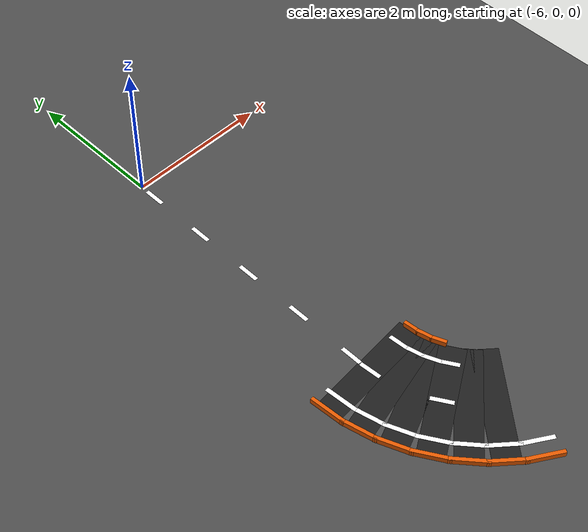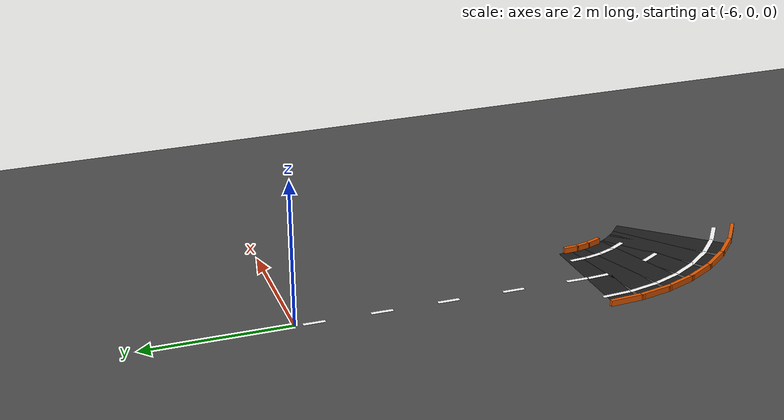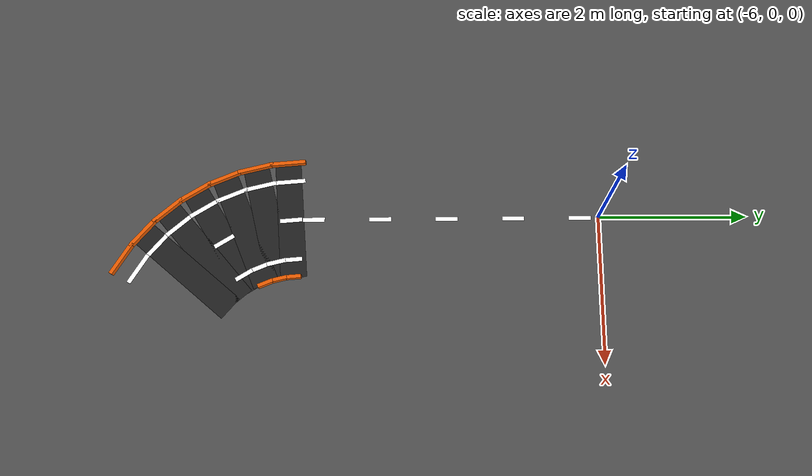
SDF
<sdf version="1.6">
 <world name="qcar_oval_wide">
  <model name="ground_plane">
   <static>true</static>
   <link name="link">
    <collision name="collision">
     <geometry><plane><normal>0 0 1</normal><size>200 200</size></plane></geometry>
    </collision>
    <visual name="visual">
     <geometry><plane><normal>0 0 1</normal><size>200 200</size></plane></geometry>
     <material><ambient>0.3 0.3 0.3 1</ambient><diffuse>0.3 0.3 0.3 1</diffuse></material>
    </visual>
   </link>
  </model>
  <model name="m47">
   <static>true</static>
   <pose>-6.0000 -3.8500 0.00200 0 0 0.00000</pose>
   <link name="l">
    <visual name="v">
     <geometry><box><size>0.0600 0.3000 0.0010</size></box></geometry>
     <material><ambient>1 1 1 1</ambient><diffuse>1 1 1 1</diffuse></material>
    </visual>
   </link>
  </model>
  <model name="m48">
   <static>true</static>
   <pose>-6.0000 -2.9500 0.00200 0 0 0.00000</pose>
   <link name="l">
    <visual name="v">
     <geometry><box><size>0.0600 0.3000 0.0010</size></box></geometry>
     <material><ambient>1 1 1 1</ambient><diffuse>1 1 1 1</diffuse></material>
    </visual>
   </link>
  </model>
  <model name="m49">
   <static>true</static>
   <pose>-6.0000 -2.0500 0.00200 0 0 0.00000</pose>
   <link name="l">
    <visual name="v">
     <geometry><box><size>0.0600 0.3000 0.0010</size></box></geometry>
     <material><ambient>1 1 1 1</ambient><diffuse>1 1 1 1</diffuse></material>
    </visual>
   </link>
  </model>
  <model name="m50">
   <static>true</static>
   <pose>-6.0000 -1.1500 0.00200 0 0 0.00000</pose>
   <link name="l">
    <visual name="v">
     <geometry><box><size>0.0600 0.3000 0.0010</size></box></geometry>
     <material><ambient>1 1 1 1</ambient><diffuse>1 1 1 1</diffuse></material>
    </visual>
   </link>
  </model>
  <model name="m51">
   <static>true</static>
   <pose>-6.0000 -0.2500 0.00200 0 0 0.00000</pose>
   <link name="l">
    <visual name="v">
     <geometry><box><size>0.0600 0.3000 0.0010</size></box></geometry>
     <material><ambient>1 1 1 1</ambient><diffuse>1 1 1 1</diffuse></material>
    </visual>
   </link>
  </model>
  <model name="m218">
   <static>true</static>
   <pose>-5.9938 -4.1569 0.00100 0 0 4.79093</pose>
   <link name="l">
    <visual name="v">
     <geometry><box><size>0.3519 1.6000 0.0010</size></box></geometry>
     <material><ambient>0.12 0.12 0.12 1</ambient><diffuse>0.12 0.12 0.12 1</diffuse></material>
    </visual>
   </link>
  </model>
  <model name="m219">
   <static>true</static>
   <pose>-5.1963 -4.0942 0.04000 0 0 4.79093</pose>
   <link name="l">
    <visual name="v">
     <geometry><box><size>0.2111 0.0500 0.0800</size></box></geometry>
     <material><ambient>0.9 0.35 0.0 1</ambient><diffuse>0.9 0.35 0.0 1</diffuse></material>
    </visual>
   </link>
  </model>
  <model name="m220">
   <static>true</static>
   <pose>-6.7914 -4.2197 0.04000 0 0 4.79093</pose>
   <link name="l">
    <visual name="v">
     <geometry><box><size>0.4926 0.0500 0.0800</size></box></geometry>
     <material><ambient>0.9 0.35 0.0 1</ambient><diffuse>0.9 0.35 0.0 1</diffuse></material>
    </visual>
   </link>
  </model>
  <model name="m221">
   <static>true</static>
   <pose>-5.4455 -4.1138 0.00200 0 0 4.79093</pose>
   <link name="l">
    <visual name="v">
     <geometry><box><size>0.2551 0.0600 0.0010</size></box></geometry>
     <material><ambient>1 1 1 1</ambient><diffuse>1 1 1 1</diffuse></material>
    </visual>
   </link>
  </model>
  <model name="m222">
   <static>true</static>
   <pose>-6.5421 -4.2001 0.00200 0 0 4.79093</pose>
   <link name="l">
    <visual name="v">
     <geometry><box><size>0.4486 0.0600 0.0010</size></box></geometry>
     <material><ambient>1 1 1 1</ambient><diffuse>1 1 1 1</diffuse></material>
    </visual>
   </link>
  </model>
  <model name="m223">
   <static>true</static>
   <pose>-5.9938 -4.1569 0.00200 0 0 4.79093</pose>
   <link name="l">
    <visual name="v">
     <geometry><box><size>0.3000 0.0600 0.0010</size></box></geometry>
     <material><ambient>1 1 1 1</ambient><diffuse>1 1 1 1</diffuse></material>
    </visual>
   </link>
  </model>
  <model name="m224">
   <static>true</static>
   <pose>-5.9447 -4.4669 0.00100 0 0 4.94801</pose>
   <link name="l">
    <visual name="v">
     <geometry><box><size>0.3519 1.6000 0.0010</size></box></geometry>
     <material><ambient>0.12 0.12 0.12 1</ambient><diffuse>0.12 0.12 0.12 1</diffuse></material>
    </visual>
   </link>
  </model>
  <model name="m225">
   <static>true</static>
   <pose>-5.1668 -4.2801 0.04000 0 0 4.94801</pose>
   <link name="l">
    <visual name="v">
     <geometry><box><size>0.2111 0.0500 0.0800</size></box></geometry>
     <material><ambient>0.9 0.35 0.0 1</ambient><diffuse>0.9 0.35 0.0 1</diffuse></material>
    </visual>
   </link>
  </model>
  <model name="m226">
   <static>true</static>
   <pose>-6.7226 -4.6536 0.04000 0 0 4.94801</pose>
   <link name="l">
    <visual name="v">
     <geometry><box><size>0.4926 0.0500 0.0800</size></box></geometry>
     <material><ambient>0.9 0.35 0.0 1</ambient><diffuse>0.9 0.35 0.0 1</diffuse></material>
    </visual>
   </link>
  </model>
  <model name="m227">
   <static>true</static>
   <pose>-5.4099 -4.3385 0.00200 0 0 4.94801</pose>
   <link name="l">
    <visual name="v">
     <geometry><box><size>0.2551 0.0600 0.0010</size></box></geometry>
     <material><ambient>1 1 1 1</ambient><diffuse>1 1 1 1</diffuse></material>
    </visual>
   </link>
  </model>
  <model name="m228">
   <static>true</static>
   <pose>-6.4795 -4.5953 0.00200 0 0 4.94801</pose>
   <link name="l">
    <visual name="v">
     <geometry><box><size>0.4486 0.0600 0.0010</size></box></geometry>
     <material><ambient>1 1 1 1</ambient><diffuse>1 1 1 1</diffuse></material>
    </visual>
   </link>
  </model>
  <model name="m229">
   <static>true</static>
   <pose>-5.8478 -4.7654 0.00100 0 0 5.10509</pose>
   <link name="l">
    <visual name="v">
     <geometry><box><size>0.3519 1.6000 0.0010</size></box></geometry>
     <material><ambient>0.12 0.12 0.12 1</ambient><diffuse>0.12 0.12 0.12 1</diffuse></material>
    </visual>
   </link>
  </model>
  <model name="m230">
   <static>true</static>
   <pose>-5.1087 -4.4592 0.04000 0 0 5.10509</pose>
   <link name="l">
    <visual name="v">
     <geometry><box><size>0.2111 0.0500 0.0800</size></box></geometry>
     <material><ambient>0.9 0.35 0.0 1</ambient><diffuse>0.9 0.35 0.0 1</diffuse></material>
    </visual>
   </link>
  </model>
  <model name="m231">
   <static>true</static>
   <pose>-6.5869 -5.0715 0.04000 0 0 5.10509</pose>
   <link name="l">
    <visual name="v">
     <geometry><box><size>0.4926 0.0500 0.0800</size></box></geometry>
     <material><ambient>0.9 0.35 0.0 1</ambient><diffuse>0.9 0.35 0.0 1</diffuse></material>
    </visual>
   </link>
  </model>
  <model name="m232">
   <static>true</static>
   <pose>-5.3396 -4.5549 0.00200 0 0 5.10509</pose>
   <link name="l">
    <visual name="v">
     <geometry><box><size>0.2551 0.0600 0.0010</size></box></geometry>
     <material><ambient>1 1 1 1</ambient><diffuse>1 1 1 1</diffuse></material>
    </visual>
   </link>
  </model>
  <model name="m233">
   <static>true</static>
   <pose>-6.3559 -4.9758 0.00200 0 0 5.10509</pose>
   <link name="l">
    <visual name="v">
     <geometry><box><size>0.4486 0.0600 0.0010</size></box></geometry>
     <material><ambient>1 1 1 1</ambient><diffuse>1 1 1 1</diffuse></material>
    </visual>
   </link>
  </model>
  <model name="m234">
   <static>true</static>
   <pose>-5.7053 -5.0450 0.00100 0 0 5.26217</pose>
   <link name="l">
    <visual name="v">
     <geometry><box><size>0.3519 1.6000 0.0010</size></box></geometry>
     <material><ambient>0.12 0.12 0.12 1</ambient><diffuse>0.12 0.12 0.12 1</diffuse></material>
    </visual>
   </link>
  </model>
  <model name="m236">
   <static>true</static>
   <pose>-6.3874 -5.4630 0.04000 0 0 5.26217</pose>
   <link name="l">
    <visual name="v">
     <geometry><box><size>0.4926 0.0500 0.0800</size></box></geometry>
     <material><ambient>0.9 0.35 0.0 1</ambient><diffuse>0.9 0.35 0.0 1</diffuse></material>
    </visual>
   </link>
  </model>
  <model name="m237">
   <static>true</static>
   <pose>-5.2363 -4.7576 0.00200 0 0 5.26217</pose>
   <link name="l">
    <visual name="v">
     <geometry><box><size>0.2551 0.0600 0.0010</size></box></geometry>
     <material><ambient>1 1 1 1</ambient><diffuse>1 1 1 1</diffuse></material>
    </visual>
   </link>
  </model>
  <model name="m238">
   <static>true</static>
   <pose>-6.1742 -5.3324 0.00200 0 0 5.26217</pose>
   <link name="l">
    <visual name="v">
     <geometry><box><size>0.4486 0.0600 0.0010</size></box></geometry>
     <material><ambient>1 1 1 1</ambient><diffuse>1 1 1 1</diffuse></material>
    </visual>
   </link>
  </model>
  <model name="m239">
   <static>true</static>
   <pose>-5.7053 -5.0450 0.00200 0 0 5.26217</pose>
   <link name="l">
    <visual name="v">
     <geometry><box><size>0.3000 0.0600 0.0010</size></box></geometry>
     <material><ambient>1 1 1 1</ambient><diffuse>1 1 1 1</diffuse></material>
    </visual>
   </link>
  </model>
  <model name="m240">
   <static>true</static>
   <pose>-5.5208 -5.2989 0.00100 0 0 5.41925</pose>
   <link name="l">
    <visual name="v">
     <geometry><box><size>0.3519 1.6000 0.0010</size></box></geometry>
     <material><ambient>0.12 0.12 0.12 1</ambient><diffuse>0.12 0.12 0.12 1</diffuse></material>
    </visual>
   </link>
  </model>
  <model name="m242">
   <static>true</static>
   <pose>-6.1291 -5.8185 0.04000 0 0 5.41925</pose>
   <link name="l">
    <visual name="v">
     <geometry><box><size>0.4926 0.0500 0.0800</size></box></geometry>
     <material><ambient>0.9 0.35 0.0 1</ambient><diffuse>0.9 0.35 0.0 1</diffuse></material>
    </visual>
   </link>
  </model>
  <model name="m244">
   <static>true</static>
   <pose>-5.9390 -5.6561 0.00200 0 0 5.41925</pose>
   <link name="l">
    <visual name="v">
     <geometry><box><size>0.4486 0.0600 0.0010</size></box></geometry>
     <material><ambient>1 1 1 1</ambient><diffuse>1 1 1 1</diffuse></material>
    </visual>
   </link>
  </model>
  <model name="m245">
   <static>true</static>
   <pose>-5.2989 -5.5208 0.00100 0 0 5.57633</pose>
   <link name="l">
    <visual name="v">
     <geometry><box><size>0.3519 1.6000 0.0010</size></box></geometry>
     <material><ambient>0.12 0.12 0.12 1</ambient><diffuse>0.12 0.12 0.12 1</diffuse></material>
    </visual>
   </link>
  </model>
  <model name="m247">
   <static>true</static>
   <pose>-5.8185 -6.1291 0.04000 0 0 5.57633</pose>
   <link name="l">
    <visual name="v">
     <geometry><box><size>0.4926 0.0500 0.0800</size></box></geometry>
     <material><ambient>0.9 0.35 0.0 1</ambient><diffuse>0.9 0.35 0.0 1</diffuse></material>
    </visual>
   </link>
  </model>
  <model name="m249">
   <static>true</static>
   <pose>-5.6561 -5.9390 0.00200 0 0 5.57633</pose>
   <link name="l">
    <visual name="v">
     <geometry><box><size>0.4486 0.0600 0.0010</size></box></geometry>
     <material><ambient>1 1 1 1</ambient><diffuse>1 1 1 1</diffuse></material>
    </visual>
   </link>
  </model>
  <model name="m252">
   <static>true</static>
   <pose>-5.4630 -6.3874 0.04000 0 0 5.73341</pose>
   <link name="l">
    <visual name="v">
     <geometry><box><size>0.4926 0.0500 0.0800</size></box></geometry>
     <material><ambient>0.9 0.35 0.0 1</ambient><diffuse>0.9 0.35 0.0 1</diffuse></material>
    </visual>
   </link>
  </model>
  <model name="m254">
   <static>true</static>
   <pose>-5.3324 -6.1742 0.00200 0 0 5.73341</pose>
   <link name="l">
    <visual name="v">
     <geometry><box><size>0.4486 0.0600 0.0010</size></box></geometry>
     <material><ambient>1 1 1 1</ambient><diffuse>1 1 1 1</diffuse></material>
    </visual>
   </link>
  </model>
 </world>
</sdf>
